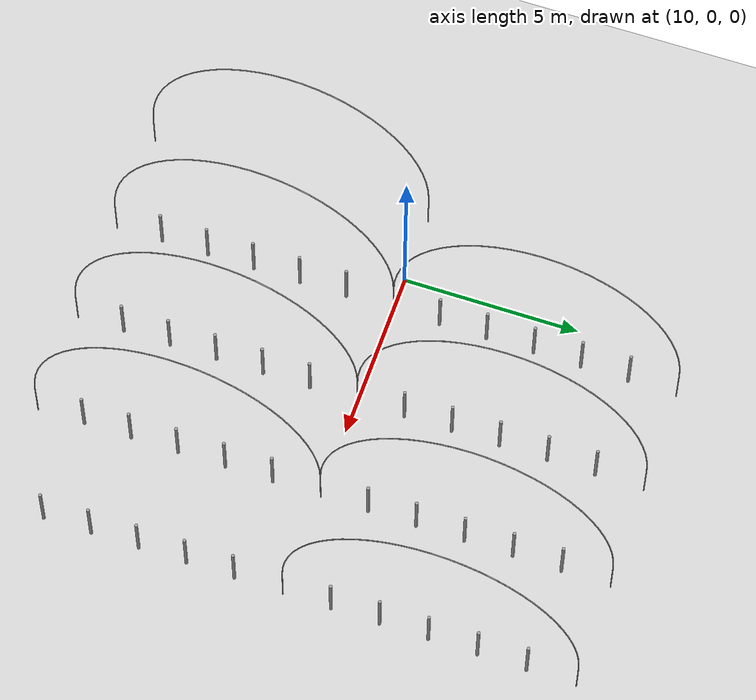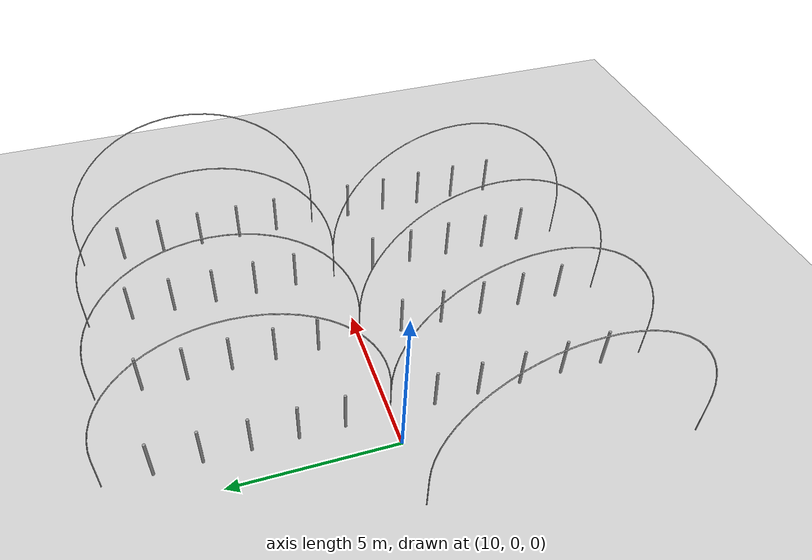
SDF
<sdf version="1.4">
 <world name="default">
  <model name="unit_cylinder_10">
   <static>1</static>
   <pose>11.02 1.35 0.691175 0.0 0.0 0.0</pose>
   <link name="link">
    <inertial>
     <mass>1</mass>
     <inertia><ixz>0</ixz><ixx>1</ixx><ixy>0</ixy><izz>1</izz><iyy>1</iyy><iyz>0</iyz></inertia>
    </inertial>
    <collision name="collision">
     <geometry><cylinder><length>1.38235</length><radius>0.0456111</radius></cylinder></geometry>
    </collision>
    <visual name="visual">
     <geometry><cylinder><length>1.38235</length><radius>0.0456111</radius></cylinder></geometry>
     <material>
      <script><uri>file://media/materials/scripts/gazebo.material</uri><name>Gazebo/Grey</name></script>
     </material>
    </visual>
    <velocity_decay><linear>0</linear><angular>0</angular></velocity_decay>
   </link>
  </model>
  <model name="unit_cylinder_11">
   <static>1</static>
   <pose>11.02 2.70 0.691175 0.0 0.0 0.0</pose>
   <link name="link">
    <inertial>
     <mass>1</mass>
     <inertia><ixz>0</ixz><ixx>1</ixx><ixy>0</ixy><izz>1</izz><iyy>1</iyy><iyz>0</iyz></inertia>
    </inertial>
    <collision name="collision">
     <geometry><cylinder><length>1.38235</length><radius>0.0456111</radius></cylinder></geometry>
    </collision>
    <visual name="visual">
     <geometry><cylinder><length>1.38235</length><radius>0.0456111</radius></cylinder></geometry>
     <material>
      <script><uri>file://media/materials/scripts/gazebo.material</uri><name>Gazebo/Grey</name></script>
     </material>
    </visual>
    <velocity_decay><linear>0</linear><angular>0</angular></velocity_decay>
   </link>
  </model>
  <model name="unit_cylinder_12">
   <static>1</static>
   <pose>11.02 4.05 0.691175 0.0 0.0 0.0</pose>
   <link name="link">
    <inertial>
     <mass>1</mass>
     <inertia><ixz>0</ixz><ixx>1</ixx><ixy>0</ixy><izz>1</izz><iyy>1</iyy><iyz>0</iyz></inertia>
    </inertial>
    <collision name="collision">
     <geometry><cylinder><length>1.38235</length><radius>0.0456111</radius></cylinder></geometry>
    </collision>
    <visual name="visual">
     <geometry><cylinder><length>1.38235</length><radius>0.0456111</radius></cylinder></geometry>
     <material>
      <script><uri>file://media/materials/scripts/gazebo.material</uri><name>Gazebo/Grey</name></script>
     </material>
    </visual>
    <velocity_decay><linear>0</linear><angular>0</angular></velocity_decay>
   </link>
  </model>
  <model name="unit_cylinder_13">
   <static>1</static>
   <pose>11.02 5.40 0.691175 0.0 0.0 0.0</pose>
   <link name="link">
    <inertial>
     <mass>1</mass>
     <inertia><ixz>0</ixz><ixx>1</ixx><ixy>0</ixy><izz>1</izz><iyy>1</iyy><iyz>0</iyz></inertia>
    </inertial>
    <collision name="collision">
     <geometry><cylinder><length>1.38235</length><radius>0.0456111</radius></cylinder></geometry>
    </collision>
    <visual name="visual">
     <geometry><cylinder><length>1.38235</length><radius>0.0456111</radius></cylinder></geometry>
     <material>
      <script><uri>file://media/materials/scripts/gazebo.material</uri><name>Gazebo/Grey</name></script>
     </material>
    </visual>
    <velocity_decay><linear>0</linear><angular>0</angular></velocity_decay>
   </link>
  </model>
  <model name="unit_cylinder_14">
   <static>1</static>
   <pose>11.02 6.75 0.691175 0.0 0.0 0.0</pose>
   <link name="link">
    <inertial>
     <mass>1</mass>
     <inertia><ixz>0</ixz><ixx>1</ixx><ixy>0</ixy><izz>1</izz><iyy>1</iyy><iyz>0</iyz></inertia>
    </inertial>
    <collision name="collision">
     <geometry><cylinder><length>1.38235</length><radius>0.0456111</radius></cylinder></geometry>
    </collision>
    <visual name="visual">
     <geometry><cylinder><length>1.38235</length><radius>0.0456111</radius></cylinder></geometry>
     <material>
      <script><uri>file://media/materials/scripts/gazebo.material</uri><name>Gazebo/Grey</name></script>
     </material>
    </visual>
    <velocity_decay><linear>0</linear><angular>0</angular></velocity_decay>
   </link>
  </model>
  <model name="unit_cylinder_15">
   <static>1</static>
   <pose>14.03 1.35 0.691175 0.0 0.0 0.0</pose>
   <link name="link">
    <inertial>
     <mass>1</mass>
     <inertia><ixz>0</ixz><ixx>1</ixx><ixy>0</ixy><izz>1</izz><iyy>1</iyy><iyz>0</iyz></inertia>
    </inertial>
    <collision name="collision">
     <geometry><cylinder><length>1.38235</length><radius>0.0456111</radius></cylinder></geometry>
    </collision>
    <visual name="visual">
     <geometry><cylinder><length>1.38235</length><radius>0.0456111</radius></cylinder></geometry>
     <material>
      <script><uri>file://media/materials/scripts/gazebo.material</uri><name>Gazebo/Grey</name></script>
     </material>
    </visual>
    <velocity_decay><linear>0</linear><angular>0</angular></velocity_decay>
   </link>
  </model>
  <model name="unit_cylinder_16">
   <static>1</static>
   <pose>14.03 2.70 0.691175 0.0 0.0 0.0</pose>
   <link name="link">
    <inertial>
     <mass>1</mass>
     <inertia><ixz>0</ixz><ixx>1</ixx><ixy>0</ixy><izz>1</izz><iyy>1</iyy><iyz>0</iyz></inertia>
    </inertial>
    <collision name="collision">
     <geometry><cylinder><length>1.38235</length><radius>0.0456111</radius></cylinder></geometry>
    </collision>
    <visual name="visual">
     <geometry><cylinder><length>1.38235</length><radius>0.0456111</radius></cylinder></geometry>
     <material>
      <script><uri>file://media/materials/scripts/gazebo.material</uri><name>Gazebo/Grey</name></script>
     </material>
    </visual>
    <velocity_decay><linear>0</linear><angular>0</angular></velocity_decay>
   </link>
  </model>
  <model name="unit_cylinder_17">
   <static>1</static>
   <pose>14.03 4.05 0.691175 0.0 0.0 0.0</pose>
   <link name="link">
    <inertial>
     <mass>1</mass>
     <inertia><ixz>0</ixz><ixx>1</ixx><ixy>0</ixy><izz>1</izz><iyy>1</iyy><iyz>0</iyz></inertia>
    </inertial>
    <collision name="collision">
     <geometry><cylinder><length>1.38235</length><radius>0.0456111</radius></cylinder></geometry>
    </collision>
    <visual name="visual">
     <geometry><cylinder><length>1.38235</length><radius>0.0456111</radius></cylinder></geometry>
     <material>
      <script><uri>file://media/materials/scripts/gazebo.material</uri><name>Gazebo/Grey</name></script>
     </material>
    </visual>
    <velocity_decay><linear>0</linear><angular>0</angular></velocity_decay>
   </link>
  </model>
  <model name="unit_cylinder_18">
   <static>1</static>
   <pose>14.03 5.40 0.691175 0.0 0.0 0.0</pose>
   <link name="link">
    <inertial>
     <mass>1</mass>
     <inertia><ixz>0</ixz><ixx>1</ixx><ixy>0</ixy><izz>1</izz><iyy>1</iyy><iyz>0</iyz></inertia>
    </inertial>
    <collision name="collision">
     <geometry><cylinder><length>1.38235</length><radius>0.0456111</radius></cylinder></geometry>
    </collision>
    <visual name="visual">
     <geometry><cylinder><length>1.38235</length><radius>0.0456111</radius></cylinder></geometry>
     <material>
      <script><uri>file://media/materials/scripts/gazebo.material</uri><name>Gazebo/Grey</name></script>
     </material>
    </visual>
    <velocity_decay><linear>0</linear><angular>0</angular></velocity_decay>
   </link>
  </model>
  <model name="unit_cylinder_19">
   <static>1</static>
   <pose>14.03 6.75 0.691175 0.0 0.0 0.0</pose>
   <link name="link">
    <inertial>
     <mass>1</mass>
     <inertia><ixz>0</ixz><ixx>1</ixx><ixy>0</ixy><izz>1</izz><iyy>1</iyy><iyz>0</iyz></inertia>
    </inertial>
    <collision name="collision">
     <geometry><cylinder><length>1.38235</length><radius>0.0456111</radius></cylinder></geometry>
    </collision>
    <visual name="visual">
     <geometry><cylinder><length>1.38235</length><radius>0.0456111</radius></cylinder></geometry>
     <material>
      <script><uri>file://media/materials/scripts/gazebo.material</uri><name>Gazebo/Grey</name></script>
     </material>
    </visual>
    <velocity_decay><linear>0</linear><angular>0</angular></velocity_decay>
   </link>
  </model>
  <model name="unit_cylinder_20">
   <static>1</static>
   <pose>17.04 1.35 0.691175 0.0 0.0 0.0</pose>
   <link name="link">
    <inertial>
     <mass>1</mass>
     <inertia><ixz>0</ixz><ixx>1</ixx><ixy>0</ixy><izz>1</izz><iyy>1</iyy><iyz>0</iyz></inertia>
    </inertial>
    <collision name="collision">
     <geometry><cylinder><length>1.38235</length><radius>0.0456111</radius></cylinder></geometry>
    </collision>
    <visual name="visual">
     <geometry><cylinder><length>1.38235</length><radius>0.0456111</radius></cylinder></geometry>
     <material>
      <script><uri>file://media/materials/scripts/gazebo.material</uri><name>Gazebo/Grey</name></script>
     </material>
    </visual>
    <velocity_decay><linear>0</linear><angular>0</angular></velocity_decay>
   </link>
  </model>
  <model name="unit_cylinder_21">
   <static>1</static>
   <pose>17.04 2.70 0.691175 0.0 0.0 0.0</pose>
   <link name="link">
    <inertial>
     <mass>1</mass>
     <inertia><ixz>0</ixz><ixx>1</ixx><ixy>0</ixy><izz>1</izz><iyy>1</iyy><iyz>0</iyz></inertia>
    </inertial>
    <collision name="collision">
     <geometry><cylinder><length>1.38235</length><radius>0.0456111</radius></cylinder></geometry>
    </collision>
    <visual name="visual">
     <geometry><cylinder><length>1.38235</length><radius>0.0456111</radius></cylinder></geometry>
     <material>
      <script><uri>file://media/materials/scripts/gazebo.material</uri><name>Gazebo/Grey</name></script>
     </material>
    </visual>
    <velocity_decay><linear>0</linear><angular>0</angular></velocity_decay>
   </link>
  </model>
  <model name="unit_cylinder_22">
   <static>1</static>
   <pose>17.04 4.05 0.691175 0.0 0.0 0.0</pose>
   <link name="link">
    <inertial>
     <mass>1</mass>
     <inertia><ixz>0</ixz><ixx>1</ixx><ixy>0</ixy><izz>1</izz><iyy>1</iyy><iyz>0</iyz></inertia>
    </inertial>
    <collision name="collision">
     <geometry><cylinder><length>1.38235</length><radius>0.0456111</radius></cylinder></geometry>
    </collision>
    <visual name="visual">
     <geometry><cylinder><length>1.38235</length><radius>0.0456111</radius></cylinder></geometry>
     <material>
      <script><uri>file://media/materials/scripts/gazebo.material</uri><name>Gazebo/Grey</name></script>
     </material>
    </visual>
    <velocity_decay><linear>0</linear><angular>0</angular></velocity_decay>
   </link>
  </model>
  <model name="unit_cylinder_23">
   <static>1</static>
   <pose>17.04 5.40 0.691175 0.0 0.0 0.0</pose>
   <link name="link">
    <inertial>
     <mass>1</mass>
     <inertia><ixz>0</ixz><ixx>1</ixx><ixy>0</ixy><izz>1</izz><iyy>1</iyy><iyz>0</iyz></inertia>
    </inertial>
    <collision name="collision">
     <geometry><cylinder><length>1.38235</length><radius>0.0456111</radius></cylinder></geometry>
    </collision>
    <visual name="visual">
     <geometry><cylinder><length>1.38235</length><radius>0.0456111</radius></cylinder></geometry>
     <material>
      <script><uri>file://media/materials/scripts/gazebo.material</uri><name>Gazebo/Grey</name></script>
     </material>
    </visual>
    <velocity_decay><linear>0</linear><angular>0</angular></velocity_decay>
   </link>
  </model>
  <model name="unit_cylinder_24">
   <static>1</static>
   <pose>17.04 6.75 0.691175 0.0 0.0 0.0</pose>
   <link name="link">
    <inertial>
     <mass>1</mass>
     <inertia><ixz>0</ixz><ixx>1</ixx><ixy>0</ixy><izz>1</izz><iyy>1</iyy><iyz>0</iyz></inertia>
    </inertial>
    <collision name="collision">
     <geometry><cylinder><length>1.38235</length><radius>0.0456111</radius></cylinder></geometry>
    </collision>
    <visual name="visual">
     <geometry><cylinder><length>1.38235</length><radius>0.0456111</radius></cylinder></geometry>
     <material>
      <script><uri>file://media/materials/scripts/gazebo.material</uri><name>Gazebo/Grey</name></script>
     </material>
    </visual>
    <velocity_decay><linear>0</linear><angular>0</angular></velocity_decay>
   </link>
  </model>
  <model name="unit_cylinder_25">
   <static>1</static>
   <pose>20.05 1.35 0.691175 0.0 0.0 0.0</pose>
   <link name="link">
    <inertial>
     <mass>1</mass>
     <inertia><ixz>0</ixz><ixx>1</ixx><ixy>0</ixy><izz>1</izz><iyy>1</iyy><iyz>0</iyz></inertia>
    </inertial>
    <collision name="collision">
     <geometry><cylinder><length>1.38235</length><radius>0.0456111</radius></cylinder></geometry>
    </collision>
    <visual name="visual">
     <geometry><cylinder><length>1.38235</length><radius>0.0456111</radius></cylinder></geometry>
     <material>
      <script><uri>file://media/materials/scripts/gazebo.material</uri><name>Gazebo/Grey</name></script>
     </material>
    </visual>
    <velocity_decay><linear>0</linear><angular>0</angular></velocity_decay>
   </link>
  </model>
  <model name="unit_cylinder_26">
   <static>1</static>
   <pose>20.05 2.70 0.691175 0.0 0.0 0.0</pose>
   <link name="link">
    <inertial>
     <mass>1</mass>
     <inertia><ixz>0</ixz><ixx>1</ixx><ixy>0</ixy><izz>1</izz><iyy>1</iyy><iyz>0</iyz></inertia>
    </inertial>
    <collision name="collision">
     <geometry><cylinder><length>1.38235</length><radius>0.0456111</radius></cylinder></geometry>
    </collision>
    <visual name="visual">
     <geometry><cylinder><length>1.38235</length><radius>0.0456111</radius></cylinder></geometry>
     <material>
      <script><uri>file://media/materials/scripts/gazebo.material</uri><name>Gazebo/Grey</name></script>
     </material>
    </visual>
    <velocity_decay><linear>0</linear><angular>0</angular></velocity_decay>
   </link>
  </model>
  <model name="unit_cylinder_27">
   <static>1</static>
   <pose>20.05 4.05 0.691175 0.0 0.0 0.0</pose>
   <link name="link">
    <inertial>
     <mass>1</mass>
     <inertia><ixz>0</ixz><ixx>1</ixx><ixy>0</ixy><izz>1</izz><iyy>1</iyy><iyz>0</iyz></inertia>
    </inertial>
    <collision name="collision">
     <geometry><cylinder><length>1.38235</length><radius>0.0456111</radius></cylinder></geometry>
    </collision>
    <visual name="visual">
     <geometry><cylinder><length>1.38235</length><radius>0.0456111</radius></cylinder></geometry>
     <material>
      <script><uri>file://media/materials/scripts/gazebo.material</uri><name>Gazebo/Grey</name></script>
     </material>
    </visual>
    <velocity_decay><linear>0</linear><angular>0</angular></velocity_decay>
   </link>
  </model>
  <model name="unit_cylinder_28">
   <static>1</static>
   <pose>20.05 5.40 0.691175 0.0 0.0 0.0</pose>
   <link name="link">
    <inertial>
     <mass>1</mass>
     <inertia><ixz>0</ixz><ixx>1</ixx><ixy>0</ixy><izz>1</izz><iyy>1</iyy><iyz>0</iyz></inertia>
    </inertial>
    <collision name="collision">
     <geometry><cylinder><length>1.38235</length><radius>0.0456111</radius></cylinder></geometry>
    </collision>
    <visual name="visual">
     <geometry><cylinder><length>1.38235</length><radius>0.0456111</radius></cylinder></geometry>
     <material>
      <script><uri>file://media/materials/scripts/gazebo.material</uri><name>Gazebo/Grey</name></script>
     </material>
    </visual>
    <velocity_decay><linear>0</linear><angular>0</angular></velocity_decay>
   </link>
  </model>
  <model name="unit_cylinder_29">
   <static>1</static>
   <pose>20.05 6.75 0.691175 0.0 0.0 0.0</pose>
   <link name="link">
    <inertial>
     <mass>1</mass>
     <inertia><ixz>0</ixz><ixx>1</ixx><ixy>0</ixy><izz>1</izz><iyy>1</iyy><iyz>0</iyz></inertia>
    </inertial>
    <collision name="collision">
     <geometry><cylinder><length>1.38235</length><radius>0.0456111</radius></cylinder></geometry>
    </collision>
    <visual name="visual">
     <geometry><cylinder><length>1.38235</length><radius>0.0456111</radius></cylinder></geometry>
     <material>
      <script><uri>file://media/materials/scripts/gazebo.material</uri><name>Gazebo/Grey</name></script>
     </material>
    </visual>
    <velocity_decay><linear>0</linear><angular>0</angular></velocity_decay>
   </link>
  </model>
  <model name="dummy_arch_2">
   <static>1</static>
   <pose>11.02 0.00 0.0 1.570796 0.0 1.570796</pose>
   <link name="link">
    <inertial>
     <mass>1</mass>
     <inertia><ixz>0</ixz><ixx>10.0</ixx><ixy>0</ixy><izz>10.0</izz><iyy>1</iyy><iyz>10.0</iyz></inertia>
    </inertial>
    <collision name="collision">
     <geometry><mesh><uri>model://dummy_arch/dummy_arch.stl</uri></mesh></geometry>
    </collision>
    <visual name="visual">
     <geometry><mesh><uri>model://dummy_arch/dummy_arch.stl</uri></mesh></geometry>
     <material>
      <script><uri>file://media/materials/scripts/gazebo.material</uri><name>Gazebo/Grey</name></script>
     </material>
    </visual>
    <velocity_decay><linear>0</linear><angular>0</angular></velocity_decay>
   </link>
  </model>
  <model name="dummy_arch_3">
   <static>1</static>
   <pose>14.03 0.00 0.0 1.570796 0.0 1.570796</pose>
   <link name="link">
    <inertial>
     <mass>1</mass>
     <inertia><ixz>0</ixz><ixx>10.0</ixx><ixy>0</ixy><izz>10.0</izz><iyy>1</iyy><iyz>10.0</iyz></inertia>
    </inertial>
    <collision name="collision">
     <geometry><mesh><uri>model://dummy_arch/dummy_arch.stl</uri></mesh></geometry>
    </collision>
    <visual name="visual">
     <geometry><mesh><uri>model://dummy_arch/dummy_arch.stl</uri></mesh></geometry>
     <material>
      <script><uri>file://media/materials/scripts/gazebo.material</uri><name>Gazebo/Grey</name></script>
     </material>
    </visual>
    <velocity_decay><linear>0</linear><angular>0</angular></velocity_decay>
   </link>
  </model>
  <model name="dummy_arch_4">
   <static>1</static>
   <pose>17.04 0.00 0.0 1.570796 0.0 1.570796</pose>
   <link name="link">
    <inertial>
     <mass>1</mass>
     <inertia><ixz>0</ixz><ixx>10.0</ixx><ixy>0</ixy><izz>10.0</izz><iyy>1</iyy><iyz>10.0</iyz></inertia>
    </inertial>
    <collision name="collision">
     <geometry><mesh><uri>model://dummy_arch/dummy_arch.stl</uri></mesh></geometry>
    </collision>
    <visual name="visual">
     <geometry><mesh><uri>model://dummy_arch/dummy_arch.stl</uri></mesh></geometry>
     <material>
      <script><uri>file://media/materials/scripts/gazebo.material</uri><name>Gazebo/Grey</name></script>
     </material>
    </visual>
    <velocity_decay><linear>0</linear><angular>0</angular></velocity_decay>
   </link>
  </model>
  <model name="dummy_arch_5">
   <static>1</static>
   <pose>20.05 0.00 0.0 1.570796 0.0 1.570796</pose>
   <link name="link">
    <inertial>
     <mass>1</mass>
     <inertia><ixz>0</ixz><ixx>10.0</ixx><ixy>0</ixy><izz>10.0</izz><iyy>1</iyy><iyz>10.0</iyz></inertia>
    </inertial>
    <collision name="collision">
     <geometry><mesh><uri>model://dummy_arch/dummy_arch.stl</uri></mesh></geometry>
    </collision>
    <visual name="visual">
     <geometry><mesh><uri>model://dummy_arch/dummy_arch.stl</uri></mesh></geometry>
     <material>
      <script><uri>file://media/materials/scripts/gazebo.material</uri><name>Gazebo/Grey</name></script>
     </material>
    </visual>
    <velocity_decay><linear>0</linear><angular>0</angular></velocity_decay>
   </link>
  </model>
  <model name="unit_cylinder_60">
   <static>1</static>
   <pose>11.02 -6.75 0.691175 0.0 0.0 0.0</pose>
   <link name="link">
    <inertial>
     <mass>1</mass>
     <inertia><ixz>0</ixz><ixx>1</ixx><ixy>0</ixy><izz>1</izz><iyy>1</iyy><iyz>0</iyz></inertia>
    </inertial>
    <collision name="collision">
     <geometry><cylinder><length>1.38235</length><radius>0.0456111</radius></cylinder></geometry>
    </collision>
    <visual name="visual">
     <geometry><cylinder><length>1.38235</length><radius>0.0456111</radius></cylinder></geometry>
     <material>
      <script><uri>file://media/materials/scripts/gazebo.material</uri><name>Gazebo/Grey</name></script>
     </material>
    </visual>
    <velocity_decay><linear>0</linear><angular>0</angular></velocity_decay>
   </link>
  </model>
  <model name="unit_cylinder_61">
   <static>1</static>
   <pose>11.02 -5.40 0.691175 0.0 0.0 0.0</pose>
   <link name="link">
    <inertial>
     <mass>1</mass>
     <inertia><ixz>0</ixz><ixx>1</ixx><ixy>0</ixy><izz>1</izz><iyy>1</iyy><iyz>0</iyz></inertia>
    </inertial>
    <collision name="collision">
     <geometry><cylinder><length>1.38235</length><radius>0.0456111</radius></cylinder></geometry>
    </collision>
    <visual name="visual">
     <geometry><cylinder><length>1.38235</length><radius>0.0456111</radius></cylinder></geometry>
     <material>
      <script><uri>file://media/materials/scripts/gazebo.material</uri><name>Gazebo/Grey</name></script>
     </material>
    </visual>
    <velocity_decay><linear>0</linear><angular>0</angular></velocity_decay>
   </link>
  </model>
  <model name="unit_cylinder_62">
   <static>1</static>
   <pose>11.02 -4.05 0.691175 0.0 0.0 0.0</pose>
   <link name="link">
    <inertial>
     <mass>1</mass>
     <inertia><ixz>0</ixz><ixx>1</ixx><ixy>0</ixy><izz>1</izz><iyy>1</iyy><iyz>0</iyz></inertia>
    </inertial>
    <collision name="collision">
     <geometry><cylinder><length>1.38235</length><radius>0.0456111</radius></cylinder></geometry>
    </collision>
    <visual name="visual">
     <geometry><cylinder><length>1.38235</length><radius>0.0456111</radius></cylinder></geometry>
     <material>
      <script><uri>file://media/materials/scripts/gazebo.material</uri><name>Gazebo/Grey</name></script>
     </material>
    </visual>
    <velocity_decay><linear>0</linear><angular>0</angular></velocity_decay>
   </link>
  </model>
  <model name="unit_cylinder_63">
   <static>1</static>
   <pose>11.02 -2.70 0.691175 0.0 0.0 0.0</pose>
   <link name="link">
    <inertial>
     <mass>1</mass>
     <inertia><ixz>0</ixz><ixx>1</ixx><ixy>0</ixy><izz>1</izz><iyy>1</iyy><iyz>0</iyz></inertia>
    </inertial>
    <collision name="collision">
     <geometry><cylinder><length>1.38235</length><radius>0.0456111</radius></cylinder></geometry>
    </collision>
    <visual name="visual">
     <geometry><cylinder><length>1.38235</length><radius>0.0456111</radius></cylinder></geometry>
     <material>
      <script><uri>file://media/materials/scripts/gazebo.material</uri><name>Gazebo/Grey</name></script>
     </material>
    </visual>
    <velocity_decay><linear>0</linear><angular>0</angular></velocity_decay>
   </link>
  </model>
  <model name="unit_cylinder_64">
   <static>1</static>
   <pose>11.02 -1.35 0.691175 0.0 0.0 0.0</pose>
   <link name="link">
    <inertial>
     <mass>1</mass>
     <inertia><ixz>0</ixz><ixx>1</ixx><ixy>0</ixy><izz>1</izz><iyy>1</iyy><iyz>0</iyz></inertia>
    </inertial>
    <collision name="collision">
     <geometry><cylinder><length>1.38235</length><radius>0.0456111</radius></cylinder></geometry>
    </collision>
    <visual name="visual">
     <geometry><cylinder><length>1.38235</length><radius>0.0456111</radius></cylinder></geometry>
     <material>
      <script><uri>file://media/materials/scripts/gazebo.material</uri><name>Gazebo/Grey</name></script>
     </material>
    </visual>
    <velocity_decay><linear>0</linear><angular>0</angular></velocity_decay>
   </link>
  </model>
  <model name="unit_cylinder_65">
   <static>1</static>
   <pose>14.03 -6.75 0.691175 0.0 0.0 0.0</pose>
   <link name="link">
    <inertial>
     <mass>1</mass>
     <inertia><ixz>0</ixz><ixx>1</ixx><ixy>0</ixy><izz>1</izz><iyy>1</iyy><iyz>0</iyz></inertia>
    </inertial>
    <collision name="collision">
     <geometry><cylinder><length>1.38235</length><radius>0.0456111</radius></cylinder></geometry>
    </collision>
    <visual name="visual">
     <geometry><cylinder><length>1.38235</length><radius>0.0456111</radius></cylinder></geometry>
     <material>
      <script><uri>file://media/materials/scripts/gazebo.material</uri><name>Gazebo/Grey</name></script>
     </material>
    </visual>
    <velocity_decay><linear>0</linear><angular>0</angular></velocity_decay>
   </link>
  </model>
  <model name="unit_cylinder_66">
   <static>1</static>
   <pose>14.03 -5.40 0.691175 0.0 0.0 0.0</pose>
   <link name="link">
    <inertial>
     <mass>1</mass>
     <inertia><ixz>0</ixz><ixx>1</ixx><ixy>0</ixy><izz>1</izz><iyy>1</iyy><iyz>0</iyz></inertia>
    </inertial>
    <collision name="collision">
     <geometry><cylinder><length>1.38235</length><radius>0.0456111</radius></cylinder></geometry>
    </collision>
    <visual name="visual">
     <geometry><cylinder><length>1.38235</length><radius>0.0456111</radius></cylinder></geometry>
     <material>
      <script><uri>file://media/materials/scripts/gazebo.material</uri><name>Gazebo/Grey</name></script>
     </material>
    </visual>
    <velocity_decay><linear>0</linear><angular>0</angular></velocity_decay>
   </link>
  </model>
  <model name="unit_cylinder_67">
   <static>1</static>
   <pose>14.03 -4.05 0.691175 0.0 0.0 0.0</pose>
   <link name="link">
    <inertial>
     <mass>1</mass>
     <inertia><ixz>0</ixz><ixx>1</ixx><ixy>0</ixy><izz>1</izz><iyy>1</iyy><iyz>0</iyz></inertia>
    </inertial>
    <collision name="collision">
     <geometry><cylinder><length>1.38235</length><radius>0.0456111</radius></cylinder></geometry>
    </collision>
    <visual name="visual">
     <geometry><cylinder><length>1.38235</length><radius>0.0456111</radius></cylinder></geometry>
     <material>
      <script><uri>file://media/materials/scripts/gazebo.material</uri><name>Gazebo/Grey</name></script>
     </material>
    </visual>
    <velocity_decay><linear>0</linear><angular>0</angular></velocity_decay>
   </link>
  </model>
  <model name="unit_cylinder_68">
   <static>1</static>
   <pose>14.03 -2.70 0.691175 0.0 0.0 0.0</pose>
   <link name="link">
    <inertial>
     <mass>1</mass>
     <inertia><ixz>0</ixz><ixx>1</ixx><ixy>0</ixy><izz>1</izz><iyy>1</iyy><iyz>0</iyz></inertia>
    </inertial>
    <collision name="collision">
     <geometry><cylinder><length>1.38235</length><radius>0.0456111</radius></cylinder></geometry>
    </collision>
    <visual name="visual">
     <geometry><cylinder><length>1.38235</length><radius>0.0456111</radius></cylinder></geometry>
     <material>
      <script><uri>file://media/materials/scripts/gazebo.material</uri><name>Gazebo/Grey</name></script>
     </material>
    </visual>
    <velocity_decay><linear>0</linear><angular>0</angular></velocity_decay>
   </link>
  </model>
  <model name="unit_cylinder_69">
   <static>1</static>
   <pose>14.03 -1.35 0.691175 0.0 0.0 0.0</pose>
   <link name="link">
    <inertial>
     <mass>1</mass>
     <inertia><ixz>0</ixz><ixx>1</ixx><ixy>0</ixy><izz>1</izz><iyy>1</iyy><iyz>0</iyz></inertia>
    </inertial>
    <collision name="collision">
     <geometry><cylinder><length>1.38235</length><radius>0.0456111</radius></cylinder></geometry>
    </collision>
    <visual name="visual">
     <geometry><cylinder><length>1.38235</length><radius>0.0456111</radius></cylinder></geometry>
     <material>
      <script><uri>file://media/materials/scripts/gazebo.material</uri><name>Gazebo/Grey</name></script>
     </material>
    </visual>
    <velocity_decay><linear>0</linear><angular>0</angular></velocity_decay>
   </link>
  </model>
  <model name="unit_cylinder_70">
   <static>1</static>
   <pose>17.04 -6.75 0.691175 0.0 0.0 0.0</pose>
   <link name="link">
    <inertial>
     <mass>1</mass>
     <inertia><ixz>0</ixz><ixx>1</ixx><ixy>0</ixy><izz>1</izz><iyy>1</iyy><iyz>0</iyz></inertia>
    </inertial>
    <collision name="collision">
     <geometry><cylinder><length>1.38235</length><radius>0.0456111</radius></cylinder></geometry>
    </collision>
    <visual name="visual">
     <geometry><cylinder><length>1.38235</length><radius>0.0456111</radius></cylinder></geometry>
     <material>
      <script><uri>file://media/materials/scripts/gazebo.material</uri><name>Gazebo/Grey</name></script>
     </material>
    </visual>
    <velocity_decay><linear>0</linear><angular>0</angular></velocity_decay>
   </link>
  </model>
  <model name="unit_cylinder_71">
   <static>1</static>
   <pose>17.04 -5.40 0.691175 0.0 0.0 0.0</pose>
   <link name="link">
    <inertial>
     <mass>1</mass>
     <inertia><ixz>0</ixz><ixx>1</ixx><ixy>0</ixy><izz>1</izz><iyy>1</iyy><iyz>0</iyz></inertia>
    </inertial>
    <collision name="collision">
     <geometry><cylinder><length>1.38235</length><radius>0.0456111</radius></cylinder></geometry>
    </collision>
    <visual name="visual">
     <geometry><cylinder><length>1.38235</length><radius>0.0456111</radius></cylinder></geometry>
     <material>
      <script><uri>file://media/materials/scripts/gazebo.material</uri><name>Gazebo/Grey</name></script>
     </material>
    </visual>
    <velocity_decay><linear>0</linear><angular>0</angular></velocity_decay>
   </link>
  </model>
  <model name="unit_cylinder_72">
   <static>1</static>
   <pose>17.04 -4.05 0.691175 0.0 0.0 0.0</pose>
   <link name="link">
    <inertial>
     <mass>1</mass>
     <inertia><ixz>0</ixz><ixx>1</ixx><ixy>0</ixy><izz>1</izz><iyy>1</iyy><iyz>0</iyz></inertia>
    </inertial>
    <collision name="collision">
     <geometry><cylinder><length>1.38235</length><radius>0.0456111</radius></cylinder></geometry>
    </collision>
    <visual name="visual">
     <geometry><cylinder><length>1.38235</length><radius>0.0456111</radius></cylinder></geometry>
     <material>
      <script><uri>file://media/materials/scripts/gazebo.material</uri><name>Gazebo/Grey</name></script>
     </material>
    </visual>
    <velocity_decay><linear>0</linear><angular>0</angular></velocity_decay>
   </link>
  </model>
  <model name="unit_cylinder_73">
   <static>1</static>
   <pose>17.04 -2.70 0.691175 0.0 0.0 0.0</pose>
   <link name="link">
    <inertial>
     <mass>1</mass>
     <inertia><ixz>0</ixz><ixx>1</ixx><ixy>0</ixy><izz>1</izz><iyy>1</iyy><iyz>0</iyz></inertia>
    </inertial>
    <collision name="collision">
     <geometry><cylinder><length>1.38235</length><radius>0.0456111</radius></cylinder></geometry>
    </collision>
    <visual name="visual">
     <geometry><cylinder><length>1.38235</length><radius>0.0456111</radius></cylinder></geometry>
     <material>
      <script><uri>file://media/materials/scripts/gazebo.material</uri><name>Gazebo/Grey</name></script>
     </material>
    </visual>
    <velocity_decay><linear>0</linear><angular>0</angular></velocity_decay>
   </link>
  </model>
  <model name="unit_cylinder_74">
   <static>1</static>
   <pose>17.04 -1.35 0.691175 0.0 0.0 0.0</pose>
   <link name="link">
    <inertial>
     <mass>1</mass>
     <inertia><ixz>0</ixz><ixx>1</ixx><ixy>0</ixy><izz>1</izz><iyy>1</iyy><iyz>0</iyz></inertia>
    </inertial>
    <collision name="collision">
     <geometry><cylinder><length>1.38235</length><radius>0.0456111</radius></cylinder></geometry>
    </collision>
    <visual name="visual">
     <geometry><cylinder><length>1.38235</length><radius>0.0456111</radius></cylinder></geometry>
     <material>
      <script><uri>file://media/materials/scripts/gazebo.material</uri><name>Gazebo/Grey</name></script>
     </material>
    </visual>
    <velocity_decay><linear>0</linear><angular>0</angular></velocity_decay>
   </link>
  </model>
  <model name="unit_cylinder_75">
   <static>1</static>
   <pose>20.05 -6.75 0.691175 0.0 0.0 0.0</pose>
   <link name="link">
    <inertial>
     <mass>1</mass>
     <inertia><ixz>0</ixz><ixx>1</ixx><ixy>0</ixy><izz>1</izz><iyy>1</iyy><iyz>0</iyz></inertia>
    </inertial>
    <collision name="collision">
     <geometry><cylinder><length>1.38235</length><radius>0.0456111</radius></cylinder></geometry>
    </collision>
    <visual name="visual">
     <geometry><cylinder><length>1.38235</length><radius>0.0456111</radius></cylinder></geometry>
     <material>
      <script><uri>file://media/materials/scripts/gazebo.material</uri><name>Gazebo/Grey</name></script>
     </material>
    </visual>
    <velocity_decay><linear>0</linear><angular>0</angular></velocity_decay>
   </link>
  </model>
  <model name="unit_cylinder_76">
   <static>1</static>
   <pose>20.05 -5.40 0.691175 0.0 0.0 0.0</pose>
   <link name="link">
    <inertial>
     <mass>1</mass>
     <inertia><ixz>0</ixz><ixx>1</ixx><ixy>0</ixy><izz>1</izz><iyy>1</iyy><iyz>0</iyz></inertia>
    </inertial>
    <collision name="collision">
     <geometry><cylinder><length>1.38235</length><radius>0.0456111</radius></cylinder></geometry>
    </collision>
    <visual name="visual">
     <geometry><cylinder><length>1.38235</length><radius>0.0456111</radius></cylinder></geometry>
     <material>
      <script><uri>file://media/materials/scripts/gazebo.material</uri><name>Gazebo/Grey</name></script>
     </material>
    </visual>
    <velocity_decay><linear>0</linear><angular>0</angular></velocity_decay>
   </link>
  </model>
  <model name="unit_cylinder_77">
   <static>1</static>
   <pose>20.05 -4.05 0.691175 0.0 0.0 0.0</pose>
   <link name="link">
    <inertial>
     <mass>1</mass>
     <inertia><ixz>0</ixz><ixx>1</ixx><ixy>0</ixy><izz>1</izz><iyy>1</iyy><iyz>0</iyz></inertia>
    </inertial>
    <collision name="collision">
     <geometry><cylinder><length>1.38235</length><radius>0.0456111</radius></cylinder></geometry>
    </collision>
    <visual name="visual">
     <geometry><cylinder><length>1.38235</length><radius>0.0456111</radius></cylinder></geometry>
     <material>
      <script><uri>file://media/materials/scripts/gazebo.material</uri><name>Gazebo/Grey</name></script>
     </material>
    </visual>
    <velocity_decay><linear>0</linear><angular>0</angular></velocity_decay>
   </link>
  </model>
  <model name="unit_cylinder_78">
   <static>1</static>
   <pose>20.05 -2.70 0.691175 0.0 0.0 0.0</pose>
   <link name="link">
    <inertial>
     <mass>1</mass>
     <inertia><ixz>0</ixz><ixx>1</ixx><ixy>0</ixy><izz>1</izz><iyy>1</iyy><iyz>0</iyz></inertia>
    </inertial>
    <collision name="collision">
     <geometry><cylinder><length>1.38235</length><radius>0.0456111</radius></cylinder></geometry>
    </collision>
    <visual name="visual">
     <geometry><cylinder><length>1.38235</length><radius>0.0456111</radius></cylinder></geometry>
     <material>
      <script><uri>file://media/materials/scripts/gazebo.material</uri><name>Gazebo/Grey</name></script>
     </material>
    </visual>
    <velocity_decay><linear>0</linear><angular>0</angular></velocity_decay>
   </link>
  </model>
  <model name="unit_cylinder_79">
   <static>1</static>
   <pose>20.05 -1.35 0.691175 0.0 0.0 0.0</pose>
   <link name="link">
    <inertial>
     <mass>1</mass>
     <inertia><ixz>0</ixz><ixx>1</ixx><ixy>0</ixy><izz>1</izz><iyy>1</iyy><iyz>0</iyz></inertia>
    </inertial>
    <collision name="collision">
     <geometry><cylinder><length>1.38235</length><radius>0.0456111</radius></cylinder></geometry>
    </collision>
    <visual name="visual">
     <geometry><cylinder><length>1.38235</length><radius>0.0456111</radius></cylinder></geometry>
     <material>
      <script><uri>file://media/materials/scripts/gazebo.material</uri><name>Gazebo/Grey</name></script>
     </material>
    </visual>
    <velocity_decay><linear>0</linear><angular>0</angular></velocity_decay>
   </link>
  </model>
  <model name="dummy_arch_11">
   <static>1</static>
   <pose>8.01 -8.10 0.0 1.570796 0.0 1.570796</pose>
   <link name="link">
    <inertial>
     <mass>1</mass>
     <inertia><ixz>0</ixz><ixx>10.0</ixx><ixy>0</ixy><izz>10.0</izz><iyy>1</iyy><iyz>10.0</iyz></inertia>
    </inertial>
    <collision name="collision">
     <geometry><mesh><uri>model://dummy_arch/dummy_arch.stl</uri></mesh></geometry>
    </collision>
    <visual name="visual">
     <geometry><mesh><uri>model://dummy_arch/dummy_arch.stl</uri></mesh></geometry>
     <material>
      <script><uri>file://media/materials/scripts/gazebo.material</uri><name>Gazebo/Grey</name></script>
     </material>
    </visual>
    <velocity_decay><linear>0</linear><angular>0</angular></velocity_decay>
   </link>
  </model>
  <model name="dummy_arch_12">
   <static>1</static>
   <pose>11.02 -8.10 0.0 1.570796 0.0 1.570796</pose>
   <link name="link">
    <inertial>
     <mass>1</mass>
     <inertia><ixz>0</ixz><ixx>10.0</ixx><ixy>0</ixy><izz>10.0</izz><iyy>1</iyy><iyz>10.0</iyz></inertia>
    </inertial>
    <collision name="collision">
     <geometry><mesh><uri>model://dummy_arch/dummy_arch.stl</uri></mesh></geometry>
    </collision>
    <visual name="visual">
     <geometry><mesh><uri>model://dummy_arch/dummy_arch.stl</uri></mesh></geometry>
     <material>
      <script><uri>file://media/materials/scripts/gazebo.material</uri><name>Gazebo/Grey</name></script>
     </material>
    </visual>
    <velocity_decay><linear>0</linear><angular>0</angular></velocity_decay>
   </link>
  </model>
  <model name="dummy_arch_13">
   <static>1</static>
   <pose>14.03 -8.10 0.0 1.570796 0.0 1.570796</pose>
   <link name="link">
    <inertial>
     <mass>1</mass>
     <inertia><ixz>0</ixz><ixx>10.0</ixx><ixy>0</ixy><izz>10.0</izz><iyy>1</iyy><iyz>10.0</iyz></inertia>
    </inertial>
    <collision name="collision">
     <geometry><mesh><uri>model://dummy_arch/dummy_arch.stl</uri></mesh></geometry>
    </collision>
    <visual name="visual">
     <geometry><mesh><uri>model://dummy_arch/dummy_arch.stl</uri></mesh></geometry>
     <material>
      <script><uri>file://media/materials/scripts/gazebo.material</uri><name>Gazebo/Grey</name></script>
     </material>
    </visual>
    <velocity_decay><linear>0</linear><angular>0</angular></velocity_decay>
   </link>
  </model>
  <model name="dummy_arch_14">
   <static>1</static>
   <pose>17.04 -8.10 0.0 1.570796 0.0 1.570796</pose>
   <link name="link">
    <inertial>
     <mass>1</mass>
     <inertia><ixz>0</ixz><ixx>10.0</ixx><ixy>0</ixy><izz>10.0</izz><iyy>1</iyy><iyz>10.0</iyz></inertia>
    </inertial>
    <collision name="collision">
     <geometry><mesh><uri>model://dummy_arch/dummy_arch.stl</uri></mesh></geometry>
    </collision>
    <visual name="visual">
     <geometry><mesh><uri>model://dummy_arch/dummy_arch.stl</uri></mesh></geometry>
     <material>
      <script><uri>file://media/materials/scripts/gazebo.material</uri><name>Gazebo/Grey</name></script>
     </material>
    </visual>
    <velocity_decay><linear>0</linear><angular>0</angular></velocity_decay>
   </link>
  </model>
  <include><uri>model://sun</uri></include>
  <include><uri>model://ground_plane</uri></include>
 </world>
</sdf>
